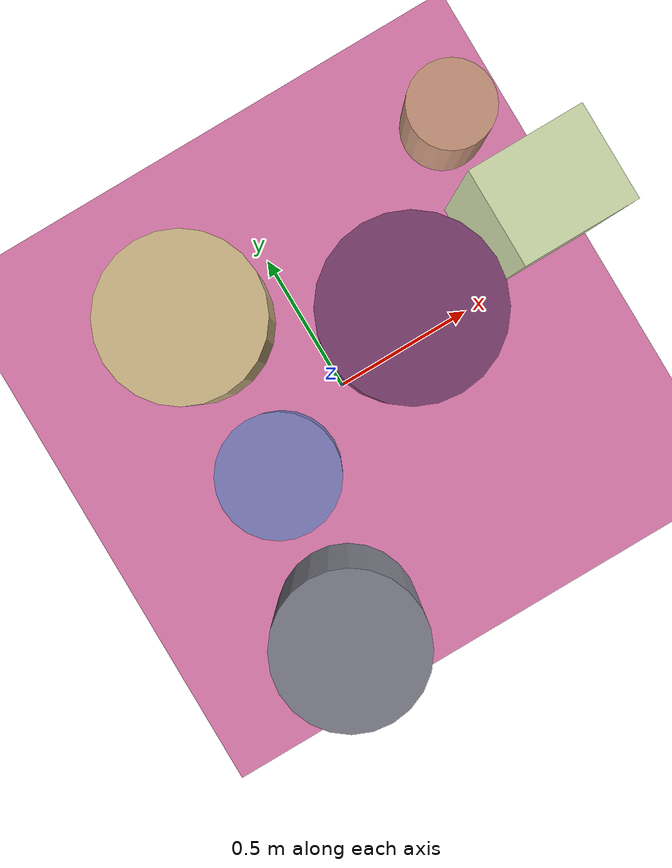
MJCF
<mujoco>
   <asset>
<texture type="skybox" builtin="gradient" rgb1="0.7 0.3 0.3" rgb2="0.8 0.9 1.0" width="256" height="256"/>
<texture name="gradient_0" builtin="gradient" rgb1="0.9 0.9 0.3" rgb2="0.8 0.6 0.8" width="200" height="200"/>
<texture name="gradient_1" builtin="gradient" rgb1="0.3 0.5 0.9" rgb2="0.7 0.5 0.6" width="200" height="200"/>
<texture name="checker_2" builtin="checker" type="2d" rgb1="0.2 0.3 0.5" rgb2="0.8 0.2 0.4" width="200" height="200"/>
<texture name="checker_3" builtin="checker" type="2d" rgb1="0.8 1.0 0.8" rgb2="0.9 0.8 0.6" width="200" height="200"/>
<texture name="checker_4" builtin="checker" type="2d" rgb1="0.6 0.6 0.5" rgb2="0.4 0.4 0.6" width="200" height="200"/>
<texture name="flat_5" builtin="flat" rgb1="0.8 0.6 0.5" rgb2="0.8 0.6 0.5"  width="200" height="200"/><material name="gradient_0_mat" reflectance="0" texture="gradient_0" texuniform="true"/>
<material name="gradient_1_mat" reflectance="0" texture="gradient_1" texuniform="true"/>
<material name="checker_2_mat" reflectance="0" texrepeat="5 5" texture="checker_2" texuniform="false" />
<material name="checker_3_mat" reflectance="0" texrepeat="8 8" texture="checker_3" texuniform="false" />
<material name="checker_4_mat" reflectance="0" texrepeat="8 8" texture="checker_4" texuniform="false" />
<material name="flat_5_mat" reflectance="0" texture="flat_5" texuniform="true"/>
   </asset>

   <worldbody>
      <light diffuse=".9 .9 .9" pos="0 0 3" dir="0 0 -1"/>
     <geom type="plane" size="1 1 0.1" rgba="0.9 0.5 0.7 1"/>
<geom type="cylinder" pos="-0.33 0.44 0.16" size="0.28 0.16 0.16" material="gradient_0_mat" />
<geom type="cylinder" pos="-0.33 -0.15 0.11" size="0.21 0.11 0.11" material="gradient_1_mat" />
<geom type="cylinder" pos="0.3 0.09 0.2" size="0.3 0.2 0.2" material="checker_2_mat" />
<geom type="box" pos="0.81 0.18 0.28" size="0.19 0.16 0.28" material="checker_3_mat" />
<geom type="cylinder" pos="-0.39 -0.7 0.22" size="0.25 0.22 0.22" material="checker_4_mat" />
<geom type="cylinder" pos="0.76 0.59 0.13" size="0.15 0.13 0.13" material="flat_5_mat" /><camera euler="60 0 180" fovy="60" name="camera_a" pos="0 -1.5 1"></camera>   </worldbody>
</mujoco>
